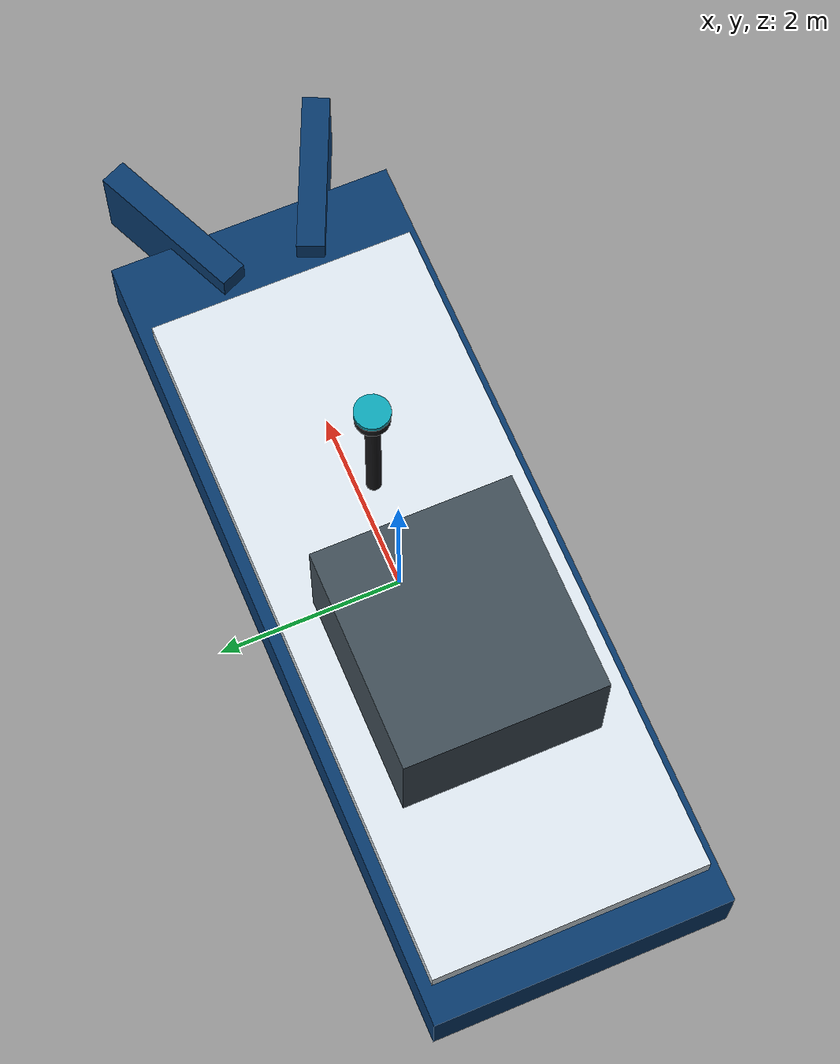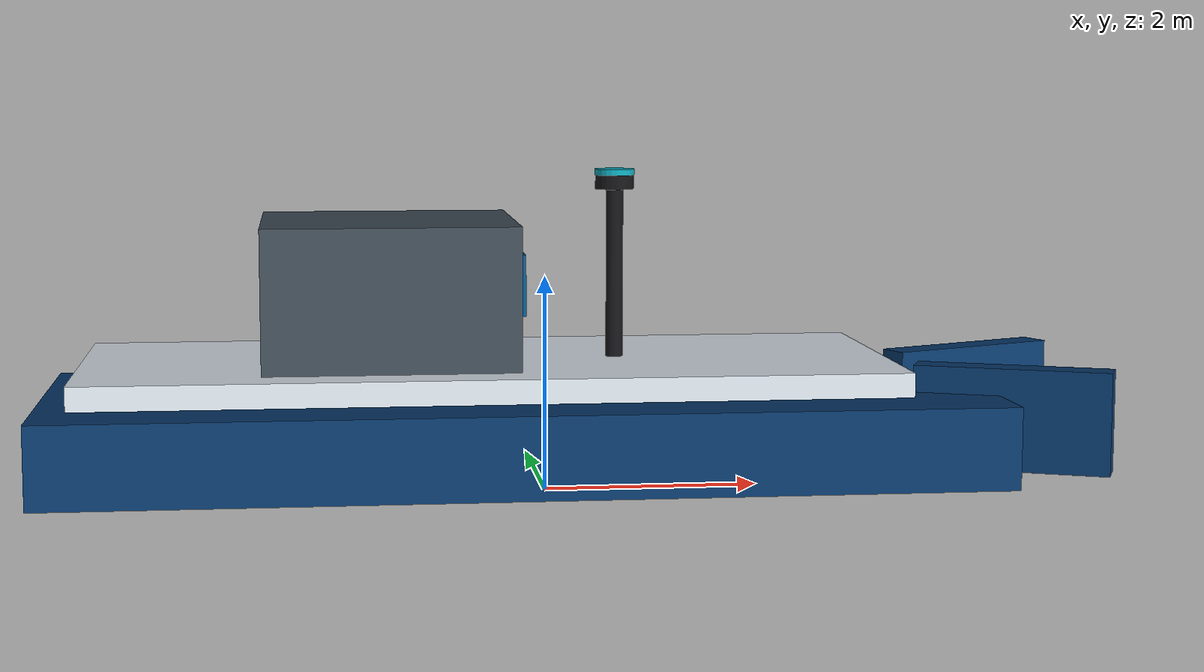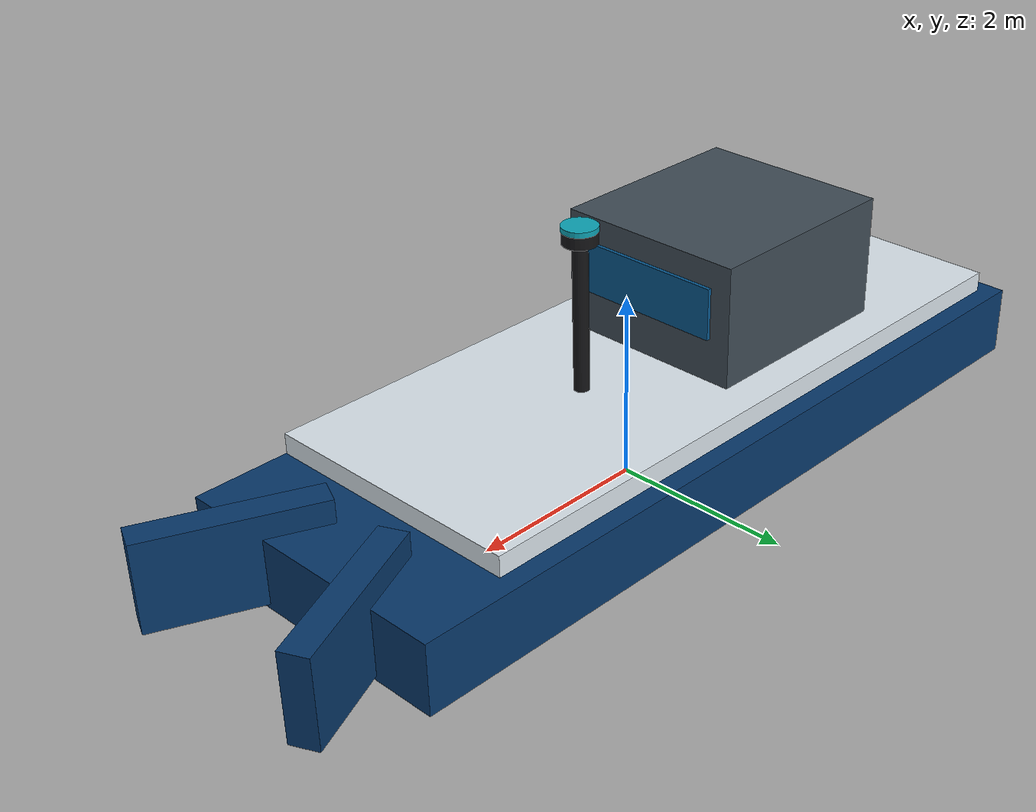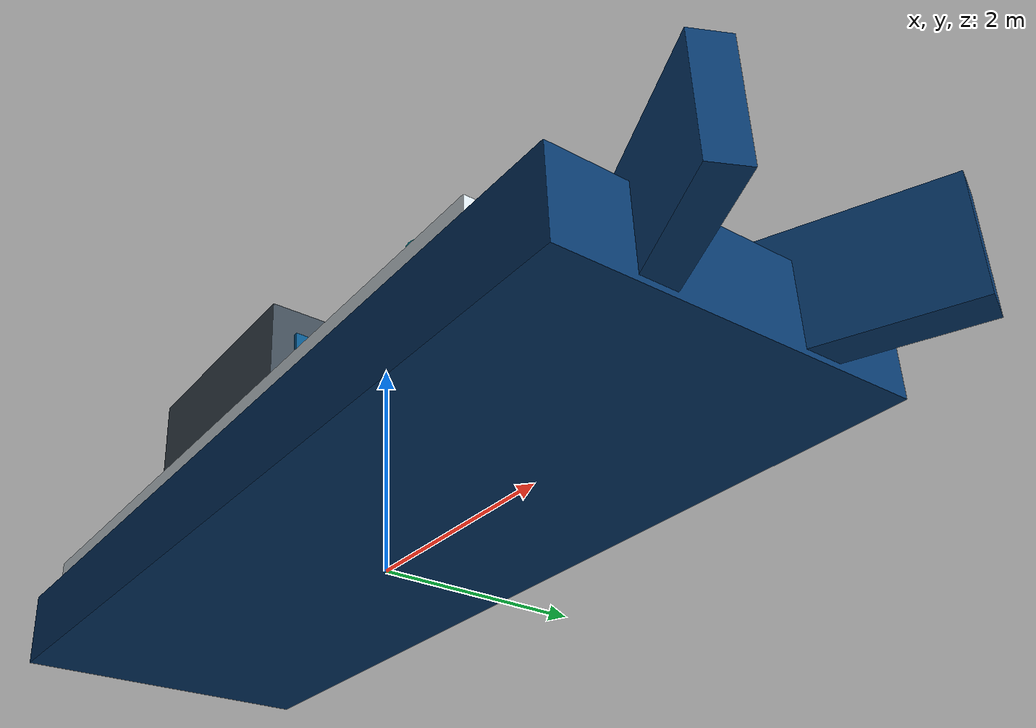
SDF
<?xml version="1.0"?>
<sdf version="1.10">
  <model name="mid360_demo_usv">
    <pose>0 0 0.72 0 0 0</pose>

    <link name="base_link">
      <gravity>false</gravity>
      <inertial>
        <mass>260</mass>
        <inertia>
          <ixx>180</ixx>
          <iyy>920</iyy>
          <izz>1050</izz>
        </inertia>
      </inertial>

      <collision name="hull_collision">
        <pose>-0.2 0 0 0 0 0</pose>
        <geometry>
          <box><size>8.8 3.2 1.0</size></box>
        </geometry>
      </collision>

      <visual name="lower_hull">
        <pose>-0.25 0 -0.15 0 0 0</pose>
        <geometry>
          <box><size>8.7 3.15 0.75</size></box>
        </geometry>
        <material>
          <ambient>0.02 0.08 0.14 1</ambient>
          <diffuse>0.03 0.22 0.42 1</diffuse>
          <specular>0.3 0.4 0.5 1</specular>
        </material>
      </visual>

      <visual name="deck">
        <pose>-0.55 0 0.42 0 0 0</pose>
        <geometry>
          <box><size>7.4 2.9 0.22</size></box>
        </geometry>
        <material>
          <ambient>0.65 0.7 0.74 1</ambient>
          <diffuse>0.86 0.9 0.93 1</diffuse>
        </material>
      </visual>

      <visual name="cabin">
        <pose>-1.45 0 1.15 0 0 0</pose>
        <geometry>
          <box><size>2.3 2.1 1.35</size></box>
        </geometry>
        <material>
          <ambient>0.12 0.15 0.18 1</ambient>
          <diffuse>0.25 0.3 0.34 1</diffuse>
        </material>
      </visual>

      <visual name="cabin_window">
        <pose>-0.27 0 1.28 0 0 0</pose>
        <geometry>
          <box><size>0.04 1.65 0.55</size></box>
        </geometry>
        <material>
          <ambient>0.02 0.16 0.25 1</ambient>
          <diffuse>0.03 0.34 0.55 1</diffuse>
          <specular>0.8 0.9 1 1</specular>
        </material>
      </visual>

      <visual name="bow_left">
        <pose>4.25 0.8 0 0 0 0.42</pose>
        <geometry>
          <box><size>1.8 0.3 0.95</size></box>
        </geometry>
        <material>
          <ambient>0.02 0.08 0.14 1</ambient>
          <diffuse>0.03 0.22 0.42 1</diffuse>
        </material>
      </visual>

      <visual name="bow_right">
        <pose>4.25 -0.8 0 0 0 -0.42</pose>
        <geometry>
          <box><size>1.8 0.3 0.95</size></box>
        </geometry>
        <material>
          <ambient>0.02 0.08 0.14 1</ambient>
          <diffuse>0.03 0.22 0.42 1</diffuse>
        </material>
      </visual>

      <visual name="sensor_mast">
        <pose>0.65 0 1.3 0 0 0</pose>
        <geometry>
          <cylinder><radius>0.08</radius><length>1.6</length></cylinder>
        </geometry>
        <material>
          <ambient>0.04 0.04 0.045 1</ambient>
          <diffuse>0.08 0.08 0.09 1</diffuse>
        </material>
      </visual>
    </link>

    <link name="mid360_link">
      <pose relative_to="base_link">0.65 0 2.18 0 0 0</pose>
      <gravity>false</gravity>
      <inertial>
        <mass>0.265</mass>
        <inertia>
          <ixx>0.00015</ixx>
          <iyy>0.00015</iyy>
          <izz>0.00015</izz>
        </inertia>
      </inertial>

      <visual name="mid360_body">
        <geometry>
          <cylinder><radius>0.18</radius><length>0.18</length></cylinder>
        </geometry>
        <material>
          <ambient>0.04 0.04 0.045 1</ambient>
          <diffuse>0.08 0.08 0.09 1</diffuse>
          <specular>0.4 0.4 0.42 1</specular>
        </material>
      </visual>

      <visual name="mid360_lens">
        <pose>0 0 0.065 0 0 0</pose>
        <geometry>
          <cylinder><radius>0.185</radius><length>0.055</length></cylinder>
        </geometry>
        <material>
          <ambient>0.03 0.26 0.3 1</ambient>
          <diffuse>0.05 0.65 0.72 1</diffuse>
          <specular>0.8 0.9 0.95 1</specular>
        </material>
      </visual>

      <sensor name="mid360_rgl" type="custom">
        <plugin
          filename="RGLServerPluginInstance"
          name="rgl::RGLServerPluginInstance">
          <range>
            <min>0.1</min>
            <max>70.0</max>
          </range>
          <update_rate>10</update_rate>
          <update_on_paused_sim>false</update_on_paused_sim>
          <topic>/usv_01/mid360_rgl/points</topic>
          <frame>usv_01/mid360_link</frame>
          <pattern_preset>Livox Mid360</pattern_preset>
        </plugin>
      </sensor>
    </link>

    <joint name="mid360_mount" type="fixed">
      <parent>base_link</parent>
      <child>mid360_link</child>
    </joint>

    <plugin
      filename="gz-sim-velocity-control-system"
      name="gz::sim::systems::VelocityControl">
      <topic>/model/usv_01/cmd_vel</topic>
      <control_linear_velocity>true</control_linear_velocity>
      <control_angular_velocity>true</control_angular_velocity>
    </plugin>

    <plugin
      filename="gz-sim-pose-publisher-system"
      name="gz::sim::systems::PosePublisher">
      <publish_model_pose>true</publish_model_pose>
      <publish_link_pose>false</publish_link_pose>
      <publish_collision_pose>false</publish_collision_pose>
      <publish_visual_pose>false</publish_visual_pose>
      <publish_nested_model_pose>false</publish_nested_model_pose>
      <publish_sensor_pose>false</publish_sensor_pose>
      <use_pose_vector_msg>true</use_pose_vector_msg>
      <update_frequency>30</update_frequency>
    </plugin>
  </model>
</sdf>
